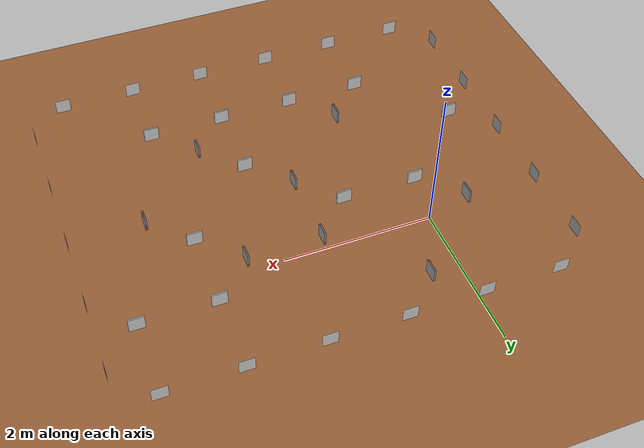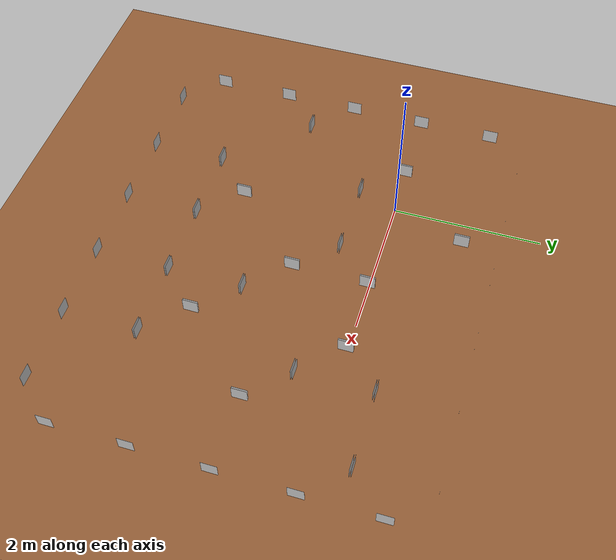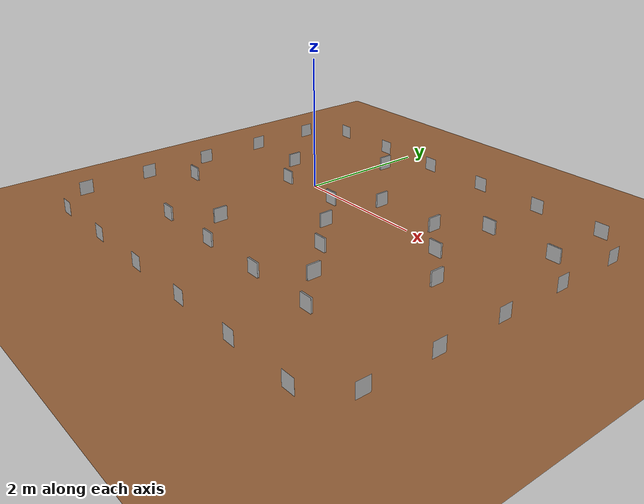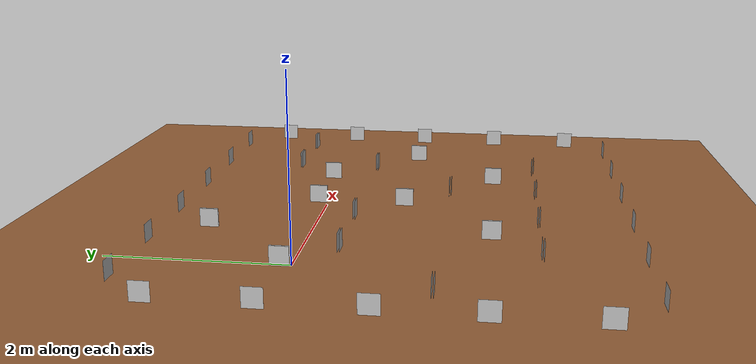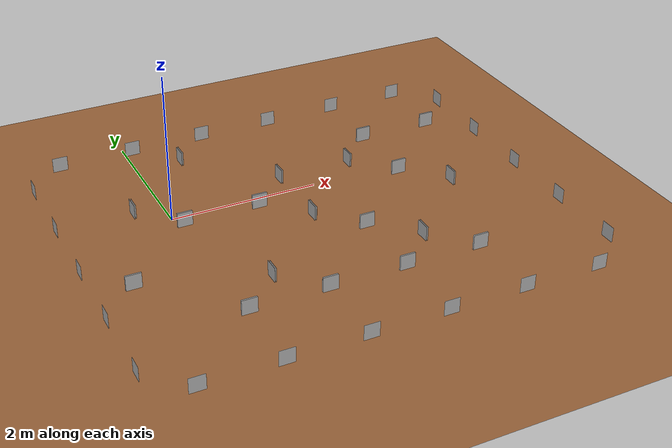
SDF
<sdf version="1.5">
 <world name="maze_6x5_v2">
  <physics type="ode">
   <max_step_size>0.001</max_step_size>
   <real_time_factor>1</real_time_factor>
   <real_time_update_rate>1000</real_time_update_rate>
   <gravity>0 0 -9.8</gravity>
  </physics>
  <plugin filename="gz-sim-physics-system" name="gz::sim::systems::Physics"/>
  <plugin filename="gz-sim-user-commands-system" name="gz::sim::systems::UserCommands"/>
  <plugin filename="gz-sim-scene-broadcaster-system" name="gz::sim::systems::SceneBroadcaster"/>
  <plugin filename="gz-sim-contact-system" name="gz::sim::systems::Contact"/>
  <plugin filename="gz-sim-sensors-system" name="gz::sim::systems::Sensors">
   <render_engine>ogre2</render_engine>
  </plugin>
  <plugin filename="gz-sim-imu-system" name="gz::sim::systems::Imu"/>
  <scene>
   <shadows>false</shadows>
   <ambient>0.2 0.2 0.2 1</ambient>
   <background>1 1 1 1</background>
   <grid>false</grid>
   <origin_visual>false</origin_visual>
  </scene>
  <include><uri>model://sun</uri></include>
  <light name="camera_spot_1_light" type="spot">
   <pose>-6 4 4 0 -1 -0.8</pose>
   <diffuse>0.5 0.5 0.5 1</diffuse>
   <specular>0.1 0.1 0.1 1</specular>
   <direction>0 0 -1</direction>
   <attenuation>
    <range>20</range>
    <constant>0.2</constant>
    <linear>0.01</linear>
    <quadratic>0.001</quadratic>
   </attenuation>
   <cast_shadows>0</cast_shadows>
   <spot><inner_angle>0.6</inner_angle><outer_angle>1</outer_angle><falloff>1</falloff></spot>
  </light>
  <light name="camera_spot_2_light" type="spot">
   <pose>5 -3 4 0 0.8 -0.6</pose>
   <diffuse>0.5 0.5 0.5 1</diffuse>
   <specular>0.1 0.1 0.1 1</specular>
   <direction>0 0 -1</direction>
   <attenuation>
    <range>20</range>
    <constant>0.3</constant>
    <linear>0.01</linear>
    <quadratic>0.001</quadratic>
   </attenuation>
   <cast_shadows>0</cast_shadows>
   <spot><inner_angle>0.6</inner_angle><outer_angle>1</outer_angle><falloff>1</falloff></spot>
  </light>
  <include><uri>model://floor_parquet2</uri><pose>1.5 -1.0 0 0 0 0</pose></include>
  <include><uri>model://maze_2_tags</uri><pose>-1.5 -3.5 0 0 0 0</pose></include>
 </world>
</sdf>
